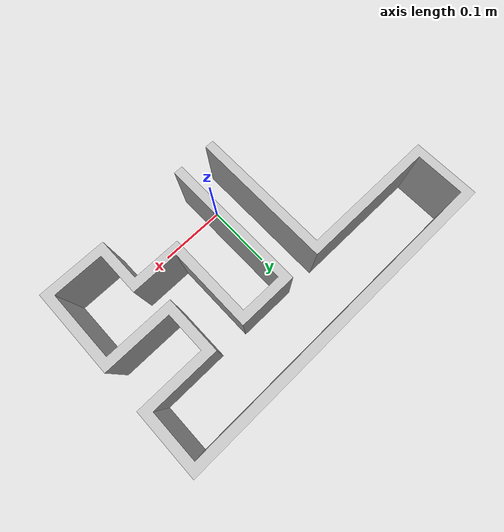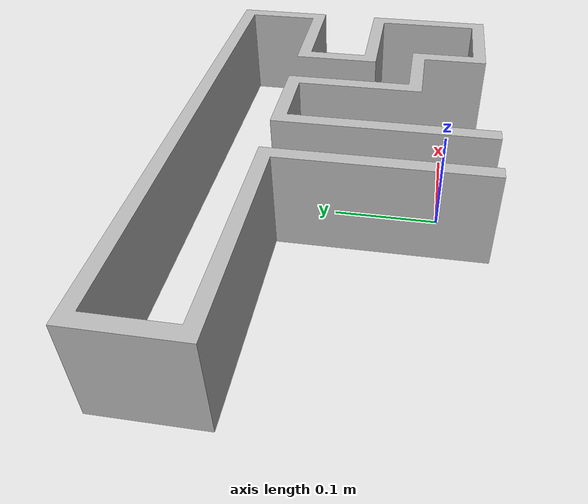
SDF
<?xml version="1.0" ?>
<sdf version="1.8">
  <model name="amr_environment">
    <static>true</static>
    <link name="link">
      <collision name="collision">
        <geometry>
          <mesh>
            <uri>model://environment/meshes/environment.obj</uri>
          </mesh>
        </geometry>
      </collision>
      <visual name="visual">
        <geometry>
          <mesh>
            <uri>model://environment/meshes/environment.obj</uri>
          </mesh>
        </geometry>
      </visual>
    </link>
  </model>
</sdf>
